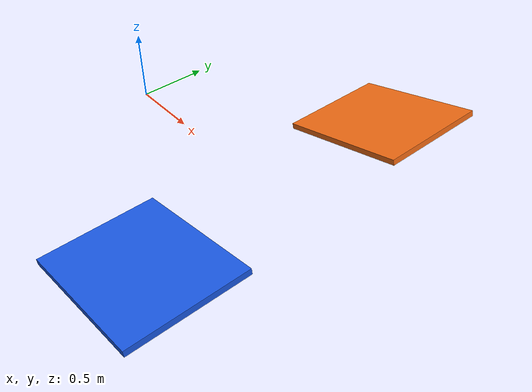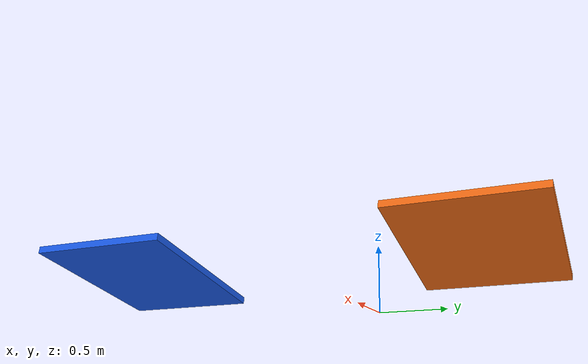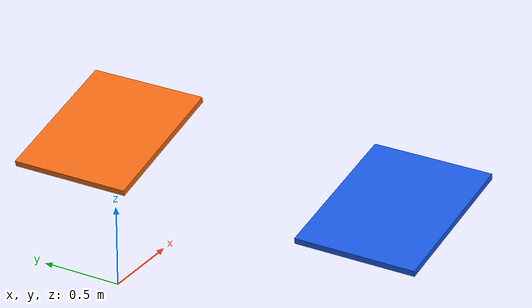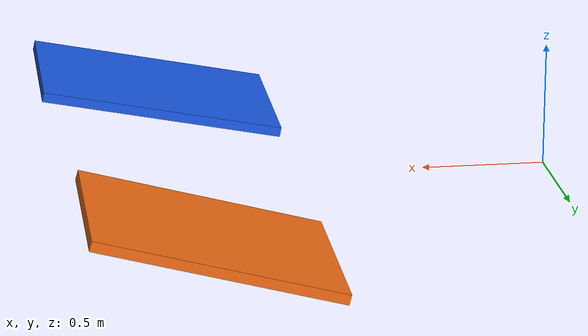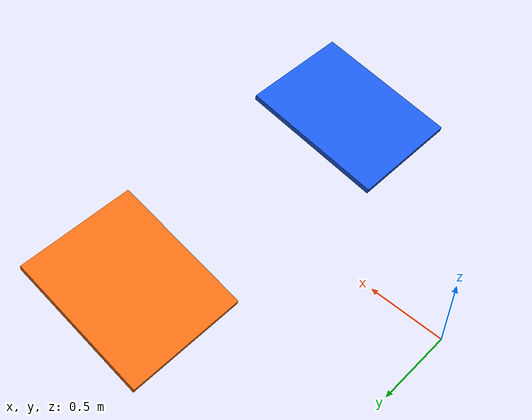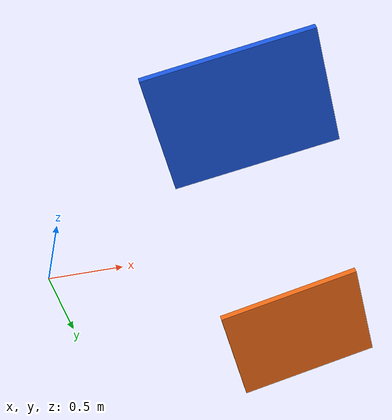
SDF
<?xml version="1.0"?>
<sdf version="1.7">
  <model name="ramp_perception_scene">
    <static>true</static>

    <link name="ramp_11_link">
      <!-- 1.00 m horizontal run, 0.80 m width, 11 degree ascent. -->
      <pose>1.503816 -1.0 0.077561 0 -0.191986218 0</pose>
      <collision name="ramp_11_collision">
        <geometry>
          <box><size>1.0187167 0.80 0.04</size></box>
        </geometry>
      </collision>
      <visual name="ramp_11_visual">
        <geometry>
          <box><size>1.0187167 0.80 0.04</size></box>
        </geometry>
        <material>
          <ambient>0.10 0.35 0.90 1</ambient>
          <diffuse>0.10 0.35 0.90 1</diffuse>
        </material>
      </visual>
    </link>

    <link name="ramp_15_link">
      <!-- 0.93 m horizontal run, 0.80 m width, 15 degree ascent. -->
      <pose>1.470176 1.0 0.105278 0 -0.261799388 0</pose>
      <collision name="ramp_15_collision">
        <geometry>
          <box><size>0.9628070 0.80 0.04</size></box>
        </geometry>
      </collision>
      <visual name="ramp_15_visual">
        <geometry>
          <box><size>0.9628070 0.80 0.04</size></box>
        </geometry>
        <material>
          <ambient>0.95 0.42 0.08 1</ambient>
          <diffuse>0.95 0.42 0.08 1</diffuse>
        </material>
      </visual>
    </link>
  </model>
</sdf>
